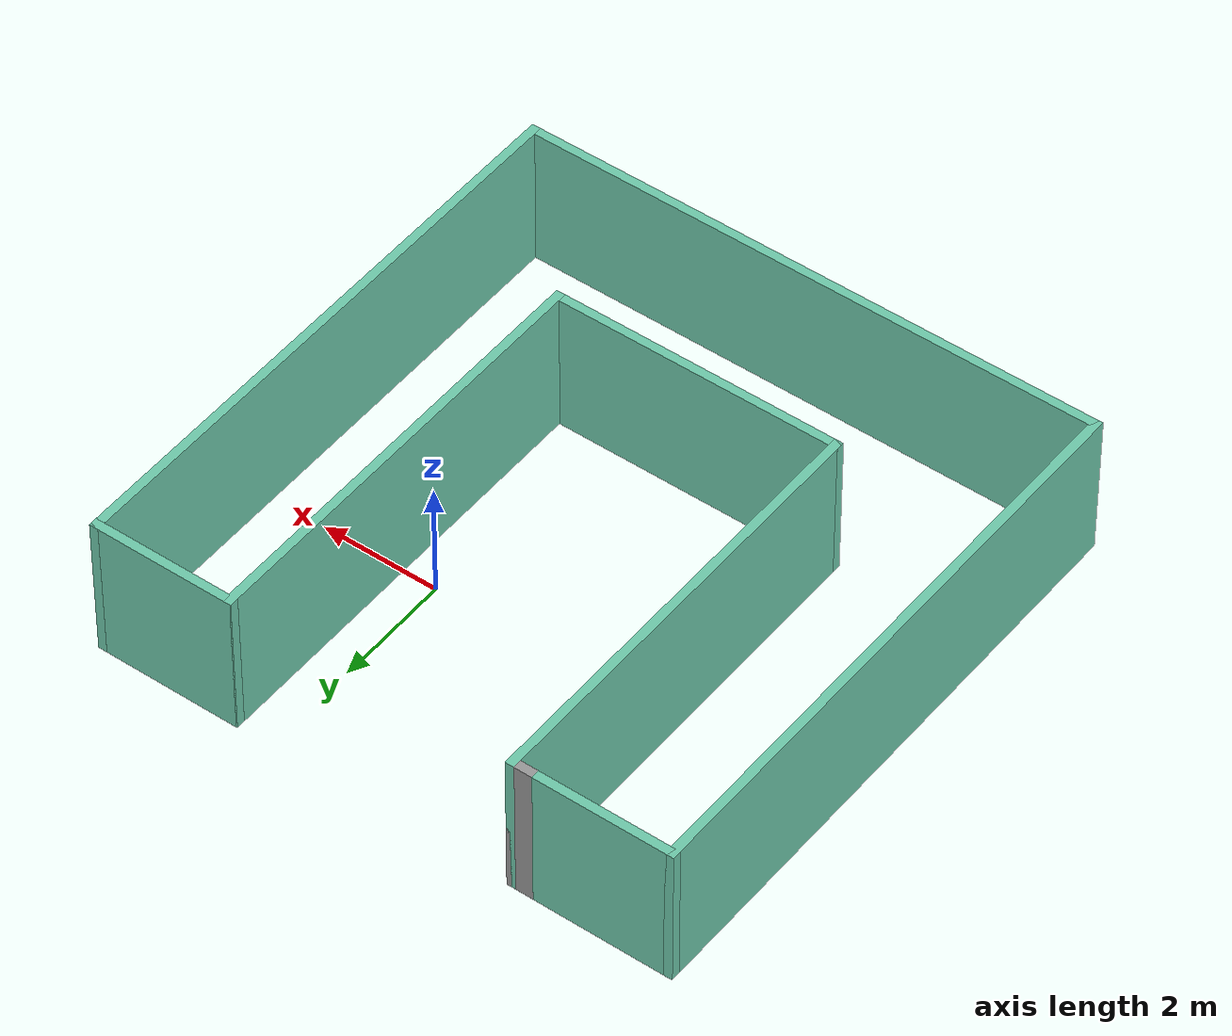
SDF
<?xml version='1.0'?>
<sdf version='1.6'>
  <model name='building_wall'>
    <pose frame=''>-1.91974 -1.28333 0 0 -0 0</pose>
    <link name='Wall_15'>
      <collision name='Wall_15_Collision'>
        <geometry>
          <box>
            <size>2.5 0.15 2.5</size>
          </box>
        </geometry>
        <pose frame=''>0 0 1.25 0 -0 0</pose>
      </collision>
      <visual name='Wall_15_Visual'>
        <pose frame=''>0 0 1.25 0 -0 0</pose>
        <geometry>
          <box>
            <size>2.5 0.15 2.5</size>
          </box>
        </geometry>
        <material>
          <script>
            <uri>file://media/materials/scripts/gazebo.material</uri>
            <name>Gazebo/Grey</name>
          </script>
          <ambient>0.435294 0.796078 0.67451 1</ambient>
        </material>
        <meta>
          <layer>0</layer>
        </meta>
      </visual>
      <pose frame=''>-3.75 4.925 0 0 -0 0</pose>
    </link>
    <link name='Wall_17'>
      <collision name='Wall_17_Collision'>
        <geometry>
          <box>
            <size>10 0.15 2.5</size>
          </box>
        </geometry>
        <pose frame=''>0 0 1.25 0 -0 0</pose>
      </collision>
      <visual name='Wall_17_Visual'>
        <pose frame=''>0 0 1.25 0 -0 0</pose>
        <geometry>
          <box>
            <size>10 0.15 2.5</size>
          </box>
        </geometry>
        <material>
          <script>
            <uri>file://media/materials/scripts/gazebo.material</uri>
            <name>Gazebo/Grey</name>
          </script>
          <ambient>0.435294 0.796078 0.67451 1</ambient>
        </material>
        <meta>
          <layer>0</layer>
        </meta>
      </visual>
      <pose frame=''>-4.925 0 0 0 0 -1.5708</pose>
    </link>
    <link name='Wall_18'>
      <collision name='Wall_18_Collision'>
        <geometry>
          <box>
            <size>10 0.15 2.5</size>
          </box>
        </geometry>
        <pose frame=''>0 0 1.25 0 -0 0</pose>
      </collision>
      <visual name='Wall_18_Visual'>
        <pose frame=''>0 0 1.25 0 -0 0</pose>
        <geometry>
          <box>
            <size>10 0.15 2.5</size>
          </box>
        </geometry>
        <material>
          <script>
            <uri>file://media/materials/scripts/gazebo.material</uri>
            <name>Gazebo/Grey</name>
          </script>
          <ambient>0.435294 0.796078 0.67451 1</ambient>
        </material>
        <meta>
          <layer>0</layer>
        </meta>
      </visual>
      <pose frame=''>0 -4.925 0 0 -0 0</pose>
    </link>
    <link name='Wall_19'>
      <collision name='Wall_19_Collision'>
        <geometry>
          <box>
            <size>10 0.15 2.5</size>
          </box>
        </geometry>
        <pose frame=''>0 0 1.25 0 -0 0</pose>
      </collision>
      <visual name='Wall_19_Visual'>
        <pose frame=''>0 0 1.25 0 -0 0</pose>
        <geometry>
          <box>
            <size>10 0.15 2.5</size>
          </box>
        </geometry>
        <material>
          <script>
            <uri>file://media/materials/scripts/gazebo.material</uri>
            <name>Gazebo/Grey</name>
          </script>
          <ambient>0.435294 0.796078 0.67451 1</ambient>
        </material>
        <meta>
          <layer>0</layer>
        </meta>
      </visual>
      <pose frame=''>4.925 0 0 0 -0 1.5708</pose>
    </link>
    <link name='Wall_20'>
      <collision name='Wall_20_Collision'>
        <geometry>
          <box>
            <size>2.5 0.15 2.5</size>
          </box>
        </geometry>
        <pose frame=''>0 0 1.25 0 -0 0</pose>
      </collision>
      <visual name='Wall_20_Visual'>
        <pose frame=''>0 0 1.25 0 -0 0</pose>
        <geometry>
          <box>
            <size>2.5 0.15 2.5</size>
          </box>
        </geometry>
        <material>
          <script>
            <uri>file://media/materials/scripts/gazebo.material</uri>
            <name>Gazebo/Grey</name>
          </script>
          <ambient>0.435294 0.796078 0.67451 1</ambient>
        </material>
        <meta>
          <layer>0</layer>
        </meta>
      </visual>
      <pose frame=''>3.75 4.925 0 0 -0 3.14159</pose>
    </link>
    <link name='Wall_21'>
      <collision name='Wall_21_Collision'>
        <geometry>
          <box>
            <size>7.5 0.15 2.5</size>
          </box>
        </geometry>
        <pose frame=''>0 0 1.25 0 -0 0</pose>
      </collision>
      <visual name='Wall_21_Visual'>
        <pose frame=''>0 0 1.25 0 -0 0</pose>
        <geometry>
          <box>
            <size>7.5 0.15 2.5</size>
          </box>
        </geometry>
        <material>
          <script>
            <uri>file://media/materials/scripts/gazebo.material</uri>
            <name>Gazebo/Grey</name>
          </script>
          <ambient>0.435294 0.796078 0.67451 1</ambient>
        </material>
        <meta>
          <layer>0</layer>
        </meta>
      </visual>
      <pose frame=''>2.575 1.25 0 0 0 -1.5708</pose>
    </link>
    <link name='Wall_22'>
      <collision name='Wall_22_Collision'>
        <geometry>
          <box>
            <size>5 0.15 2.5</size>
          </box>
        </geometry>
        <pose frame=''>0 0 1.25 0 -0 0</pose>
      </collision>
      <visual name='Wall_22_Visual'>
        <pose frame=''>0 0 1.25 0 -0 0</pose>
        <geometry>
          <box>
            <size>5 0.15 2.5</size>
          </box>
        </geometry>
        <material>
          <script>
            <uri>file://media/materials/scripts/gazebo.material</uri>
            <name>Gazebo/Grey</name>
          </script>
          <ambient>0.435294 0.796078 0.67451 1</ambient>
        </material>
        <meta>
          <layer>0</layer>
        </meta>
      </visual>
      <pose frame=''>0.15 -2.425 0 0 -0 3.14159</pose>
    </link>
    <link name='Wall_23'>
      <collision name='Wall_23_Collision'>
        <geometry>
          <box>
            <size>7.5 0.15 2.5</size>
          </box>
        </geometry>
        <pose frame=''>0 0 1.25 0 -0 0</pose>
      </collision>
      <visual name='Wall_23_Visual'>
        <pose frame=''>0 0 1.25 0 -0 0</pose>
        <geometry>
          <box>
            <size>7.5 0.15 2.5</size>
          </box>
        </geometry>
        <material>
          <script>
            <uri>file://media/materials/scripts/gazebo.material</uri>
            <name>Gazebo/Grey</name>
          </script>
          <ambient>0.435294 0.796078 0.67451 1</ambient>
        </material>
        <meta>
          <layer>0</layer>
        </meta>
      </visual>
      <pose frame=''>-2.275 1.25 0 0 -0 1.5708</pose>
    </link>
    <link name='Wall_24'>
      <collision name='Wall_24_Collision'>
        <geometry>
          <box>
            <size>0.45 0.15 2.5</size>
          </box>
        </geometry>
        <pose frame=''>0 0 1.25 0 -0 0</pose>
      </collision>
      <visual name='Wall_24_Visual'>
        <pose frame=''>0 0 1.25 0 -0 0</pose>
        <geometry>
          <box>
            <size>0.45 0.15 2.5</size>
          </box>
        </geometry>
        <material>
          <script>
            <uri>file://media/materials/scripts/gazebo.material</uri>
            <name>Gazebo/Grey</name>
          </script>
          <ambient>1 1 1 1</ambient>
        </material>
        <meta>
          <layer>0</layer>
        </meta>
      </visual>
      <pose frame=''>-2.425 4.925 0 0 -0 3.14159</pose>
    </link>
    <static>1</static>
  </model>
</sdf>
